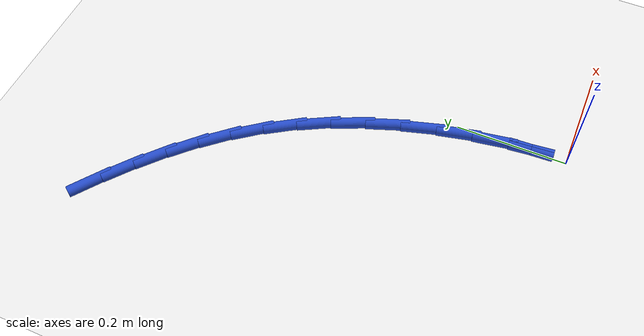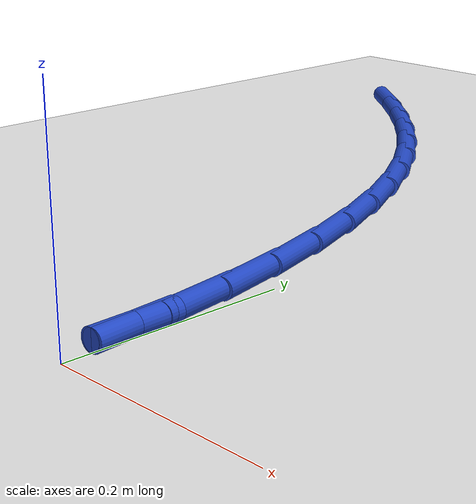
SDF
<sdf version="1.6">
 <world name="default">
  <model name="ground_plane">
   <static>1</static>
   <link name="link">
    <collision name="collision">
     <geometry><plane><normal>0 0 1</normal><size>100 100</size></plane></geometry>
     <surface><friction><ode><mu>100</mu><mu2>50</mu2></ode></friction></surface>
    </collision>
    <visual name="visual">
     <cast_shadows>0</cast_shadows>
     <geometry><plane><normal>0 0 1</normal><size>100 100</size></plane></geometry>
     <material>
      <script><uri>file://media/materials/scripts/gazebo.material</uri><name>Gazebo/WhiteGlow</name></script>
     </material>
    </visual>
   </link>
  </model>
  <model name="line">
   <link name="link_1">
    <pose>-0.002502969830069052 0.06498014577040014 0.01 0 1.57 -1.4726959684254655</pose>
    <collision name="collision">
     <geometry><cylinder><radius>0.01</radius><length>0.08</length></cylinder></geometry>
    </collision>
    <visual name="visual">
     <material>
      <script><name>Gazebo/Blue</name><uri>file://media/materials/scripts/gazebo.material</uri></script>
     </material>
     <geometry><cylinder><radius>0.01</radius><length>0.08</length></cylinder></geometry>
    </visual>
   </link>
   <link name="link_2">
    <pose>-0.008860105640153429 0.12957450409321802 0.01 0 1.57 -1.4128773170166726</pose>
    <collision name="collision">
     <geometry><cylinder><radius>0.01</radius><length>0.08</length></cylinder></geometry>
    </collision>
    <visual name="visual">
     <material>
      <script><name>Gazebo/Blue</name><uri>file://media/materials/scripts/gazebo.material</uri></script>
     </material>
     <geometry><cylinder><radius>0.01</radius><length>0.08</length></cylinder></geometry>
    </visual>
   </link>
   <link name="link_3">
    <pose>-0.01901592512212689 0.19334931790805632 0.01 0 1.57 -1.352045816484877</pose>
    <collision name="collision">
     <geometry><cylinder><radius>0.01</radius><length>0.08</length></cylinder></geometry>
    </collision>
    <visual name="visual">
     <material>
      <script><name>Gazebo/Blue</name><uri>file://media/materials/scripts/gazebo.material</uri></script>
     </material>
     <geometry><cylinder><radius>0.01</radius><length>0.08</length></cylinder></geometry>
    </visual>
   </link>
   <link name="link_4">
    <pose>-0.032914945967863214 0.25587083015451806 0.01 0 1.57 -1.2893768810498831</pose>
    <collision name="collision">
     <geometry><cylinder><radius>0.01</radius><length>0.08</length></cylinder></geometry>
    </collision>
    <visual name="visual">
     <material>
      <script><name>Gazebo/Blue</name><uri>file://media/materials/scripts/gazebo.material</uri></script>
     </material>
     <geometry><cylinder><radius>0.01</radius><length>0.08</length></cylinder></geometry>
    </visual>
   </link>
   <link name="link_5">
    <pose>-0.050501685869236215 0.3167052837722062 0.01 0 1.57 -1.2240039127786368</pose>
    <collision name="collision">
     <geometry><cylinder><radius>0.01</radius><length>0.08</length></cylinder></geometry>
    </collision>
    <visual name="visual">
     <material>
      <script><name>Gazebo/Blue</name><uri>file://media/materials/scripts/gazebo.material</uri></script>
     </material>
     <geometry><cylinder><radius>0.01</radius><length>0.08</length></cylinder></geometry>
    </visual>
   </link>
   <link name="link_6">
    <pose>-0.07172066251811968 0.3754189217007234 0.01 0 1.57 -1.1550110355953291</pose>
    <collision name="collision">
     <geometry><cylinder><radius>0.01</radius><length>0.08</length></cylinder></geometry>
    </collision>
    <visual name="visual">
     <material>
      <script><name>Gazebo/Blue</name><uri>file://media/materials/scripts/gazebo.material</uri></script>
     </material>
     <geometry><cylinder><radius>0.01</radius><length>0.08</length></cylinder></geometry>
    </visual>
   </link>
   <link name="link_7">
    <pose>-0.09651639360638736 0.4315779868796729 0.01 0 1.57 -1.08143546215855</pose>
    <collision name="collision">
     <geometry><cylinder><radius>0.01</radius><length>0.08</length></cylinder></geometry>
    </collision>
    <visual name="visual">
     <material>
      <script><name>Gazebo/Blue</name><uri>file://media/materials/scripts/gazebo.material</uri></script>
     </material>
     <geometry><cylinder><radius>0.01</radius><length>0.08</length></cylinder></geometry>
    </visual>
   </link>
   <link name="link_8">
    <pose>-0.12483339682591302 0.48474872224865717 0.01 0 1.57 -1.0028473351266067</pose>
    <collision name="collision">
     <geometry><cylinder><radius>0.01</radius><length>0.08</length></cylinder></geometry>
    </collision>
    <visual name="visual">
     <material>
      <script><name>Gazebo/Blue</name><uri>file://media/materials/scripts/gazebo.material</uri></script>
     </material>
     <geometry><cylinder><radius>0.01</radius><length>0.08</length></cylinder></geometry>
    </visual>
   </link>
   <link name="link_9">
    <pose>-0.15660800031529 0.5345460332261045 0.01 0 1.57 -0.9248274652540263</pose>
    <collision name="collision">
     <geometry><cylinder><radius>0.01</radius><length>0.08</length></cylinder></geometry>
    </collision>
    <visual name="visual">
     <material>
      <script><name>Gazebo/Blue</name><uri>file://media/materials/scripts/gazebo.material</uri></script>
     </material>
     <geometry><cylinder><radius>0.01</radius><length>0.08</length></cylinder></geometry>
    </visual>
   </link>
   <link name="link_10">
    <pose>-0.19169229245699415 0.5810853794374725 0.01 0 1.57 -0.8523993286479065</pose>
    <collision name="collision">
     <geometry><cylinder><radius>0.01</radius><length>0.08</length></cylinder></geometry>
    </collision>
    <visual name="visual">
     <material>
      <script><name>Gazebo/Blue</name><uri>file://media/materials/scripts/gazebo.material</uri></script>
     </material>
     <geometry><cylinder><radius>0.01</radius><length>0.08</length></cylinder></geometry>
    </visual>
   </link>
   <link name="link_11">
    <pose>-0.22988880360842653 0.6247766952204777 0.01 0 1.57 -0.7871751767476464</pose>
    <collision name="collision">
     <geometry><cylinder><radius>0.01</radius><length>0.08</length></cylinder></geometry>
    </collision>
    <visual name="visual">
     <material>
      <script><name>Gazebo/Blue</name><uri>file://media/materials/scripts/gazebo.material</uri></script>
     </material>
     <geometry><cylinder><radius>0.01</radius><length>0.08</length></cylinder></geometry>
    </visual>
   </link>
   <link name="link_12">
    <pose>-0.27099942896027013 0.6660336890853599 0.01 0 1.57 -0.7301920038674904</pose>
    <collision name="collision">
     <geometry><cylinder><radius>0.01</radius><length>0.08</length></cylinder></geometry>
    </collision>
    <visual name="visual">
     <material>
      <script><name>Gazebo/Blue</name><uri>file://media/materials/scripts/gazebo.material</uri></script>
     </material>
     <geometry><cylinder><radius>0.01</radius><length>0.08</length></cylinder></geometry>
    </visual>
   </link>
   <link name="link_13">
    <pose>-0.31482606370320776 0.7052700695423586 0.01 0 1.57 -0.6819855207939169</pose>
    <collision name="collision">
     <geometry><cylinder><radius>0.01</radius><length>0.08</length></cylinder></geometry>
    </collision>
    <visual name="visual">
     <material>
      <script><name>Gazebo/Blue</name><uri>file://media/materials/scripts/gazebo.material</uri></script>
     </material>
     <geometry><cylinder><radius>0.01</radius><length>0.08</length></cylinder></geometry>
    </visual>
   </link>
   <link name="link_14">
    <pose>-0.36117060302792225 0.7428995451017133 0.01 0 1.57 -0.6426855557688718</pose>
    <collision name="collision">
     <geometry><cylinder><radius>0.01</radius><length>0.08</length></cylinder></geometry>
    </collision>
    <visual name="visual">
     <material>
      <script><name>Gazebo/Blue</name><uri>file://media/materials/scripts/gazebo.material</uri></script>
     </material>
     <geometry><cylinder><radius>0.01</radius><length>0.08</length></cylinder></geometry>
    </visual>
   </link>
   <link name="link_121">
    <pose>-0.00250527777840295 0.06498592596422231 0.01 0 1.57 -1.5322643255360366</pose>
    <collision name="collision">
     <geometry><cylinder><radius>0.01</radius><length>0.08</length></cylinder></geometry>
    </collision>
    <visual name="visual">
     <material>
      <script><name>Gazebo/Blue</name><uri>file://media/materials/scripts/gazebo.material</uri></script>
     </material>
     <geometry><cylinder><radius>0.01</radius><length>0.08</length></cylinder></geometry>
    </visual>
   </link>
  </model>
 </world>
</sdf>
